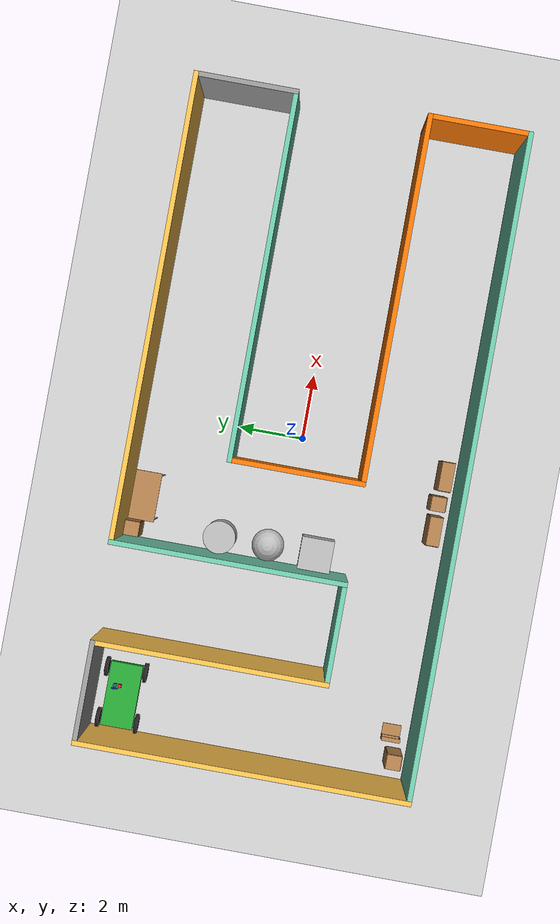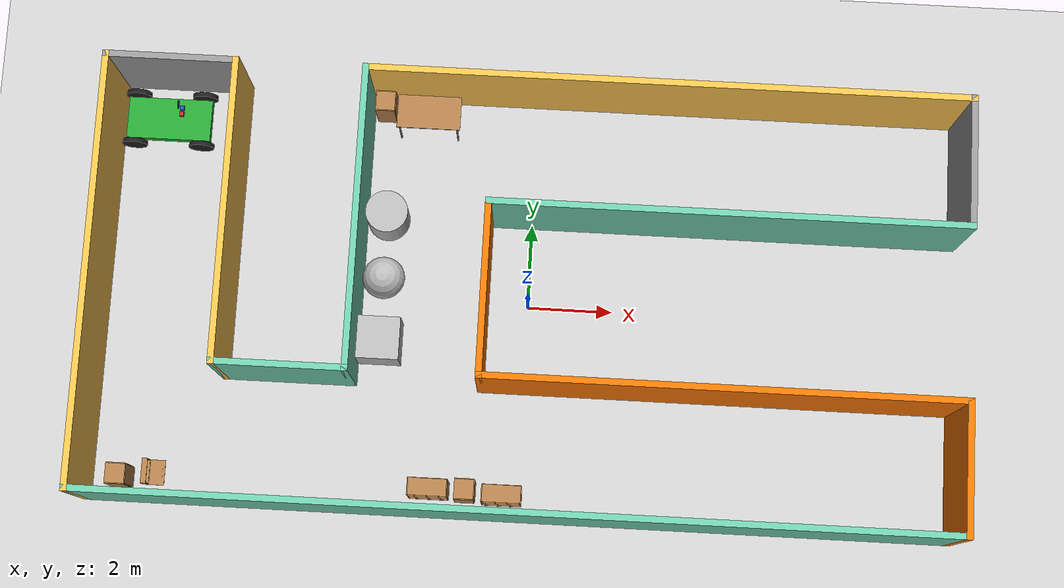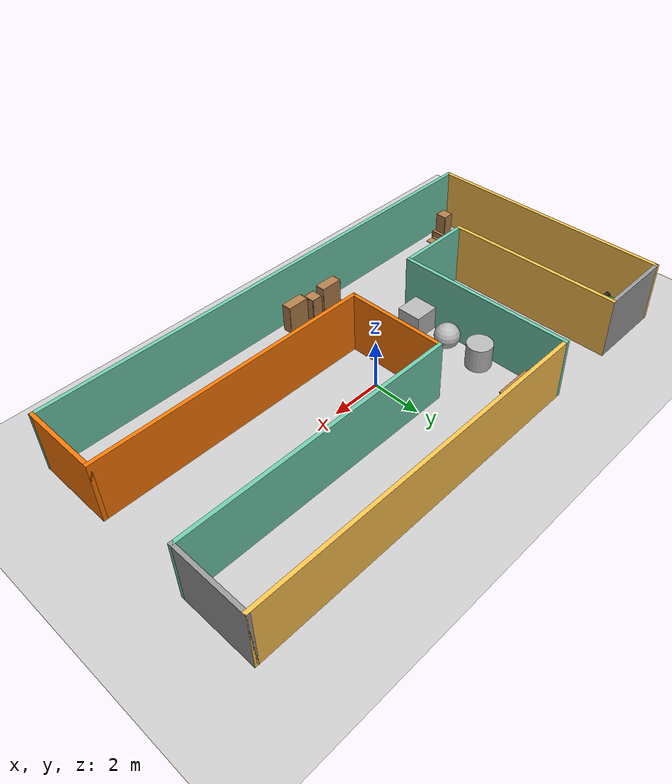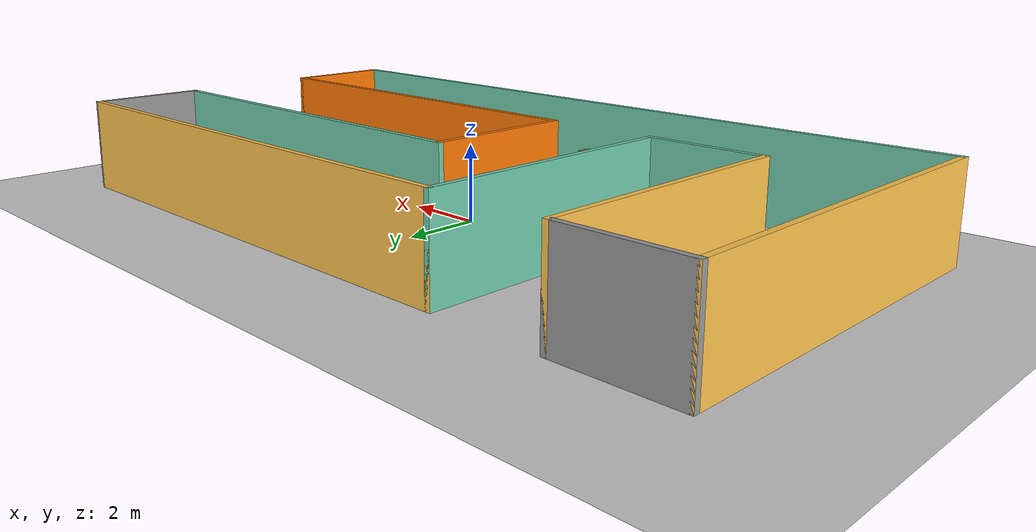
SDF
<sdf version="1.6">
 <world name="default">
  <model name="ground_plane">
   <static>1</static>
   <link name="link">
    <collision name="collision">
     <geometry><plane><normal>0 0 1</normal><size>100 100</size></plane></geometry>
     <surface>
      <contact><collide_bitmask>65535</collide_bitmask></contact>
      <friction><ode><mu>100</mu><mu2>50</mu2></ode></friction>
     </surface>
    </collision>
    <visual name="visual">
     <cast_shadows>0</cast_shadows>
     <geometry><plane><normal>0 0 1</normal><size>100 100</size></plane></geometry>
     <material>
      <script><uri>file://media/materials/scripts/gazebo.material</uri><name>Gazebo/Grey</name></script>
     </material>
    </visual>
   </link>
  </model>
  <model name="simplebuilding">
   <link name="Wall_0">
    <collision name="Wall_0_Collision">
     <geometry><box><size>10.15 0.15 2.5</size></box></geometry>
     <pose>0 0 1.25 0 -0 0</pose>
    </collision>
    <visual name="Wall_0_Visual">
     <pose>0 0 1.25 0 -0 0</pose>
     <geometry><box><size>10.15 0.15 2.5</size></box></geometry>
     <material>
      <script><uri>file://media/materials/scripts/gazebo.material</uri><name>Gazebo/Grey</name></script>
      <ambient>1 0.764706 0.305882 1</ambient>
     </material>
     <meta><layer>0</layer></meta>
    </visual>
    <pose>-10 0 0 0 0 -1.5708</pose>
   </link>
   <link name="Wall_10">
    <collision name="Wall_10_Collision">
     <geometry><box><size>7.15 0.15 2.5</size></box></geometry>
     <pose>0 0 1.25 0 -0 0</pose>
    </collision>
    <visual name="Wall_10_Visual">
     <pose>0 0 1.25 0 -0 0</pose>
     <geometry><box><size>7.15 0.15 2.5</size></box></geometry>
     <material>
      <script><uri>file://media/materials/scripts/gazebo.material</uri><name>Gazebo/Grey</name></script>
      <ambient>0.435294 0.796078 0.67451 1</ambient>
     </material>
     <meta><layer>0</layer></meta>
    </visual>
    <pose>-4 1.5 0 0 -0 1.5708</pose>
   </link>
   <link name="Wall_12">
    <collision name="Wall_12_Collision">
     <geometry><box><size>14.15 0.15 2.5</size></box></geometry>
     <pose>0 0 1.25 0 -0 0</pose>
    </collision>
    <visual name="Wall_12_Visual">
     <pose>0 0 1.25 0 -0 0</pose>
     <geometry><box><size>14.15 0.15 2.5</size></box></geometry>
     <material>
      <script><uri>file://media/materials/scripts/gazebo.material</uri><name>Gazebo/Grey</name></script>
      <ambient>1 0.764706 0.305882 1</ambient>
     </material>
     <meta><layer>0</layer></meta>
    </visual>
    <pose>3 5 0 0 -0 0</pose>
   </link>
   <link name="Wall_13">
    <collision name="Wall_13_Collision">
     <geometry><box><size>3.15 0.15 2.5</size></box></geometry>
     <pose>0 0 1.25 0 -0 0</pose>
    </collision>
    <visual name="Wall_13_Visual">
     <pose>0 0 1.25 0 -0 0</pose>
     <geometry><box><size>3.15 0.15 2.5</size></box></geometry>
     <material>
      <script><uri>file://media/materials/scripts/gazebo.material</uri><name>Gazebo/Grey</name></script>
      <ambient>1 1 1 1</ambient>
     </material>
     <meta><layer>0</layer></meta>
    </visual>
    <pose>10 3.5 0 0 0 -1.5708</pose>
   </link>
   <link name="Wall_15">
    <collision name="Wall_15_Collision">
     <geometry><box><size>11.15 0.15 2.5</size></box></geometry>
     <pose>0 0 1.25 0 -0 0</pose>
    </collision>
    <visual name="Wall_15_Visual">
     <pose>0 0 1.25 0 -0 0</pose>
     <geometry><box><size>11.15 0.15 2.5</size></box></geometry>
     <material>
      <script><uri>file://media/materials/scripts/gazebo.material</uri><name>Gazebo/Grey</name></script>
      <ambient>0.435294 0.796078 0.67451 1</ambient>
     </material>
     <meta><layer>0</layer></meta>
    </visual>
    <pose>4.5 2 0 0 -0 3.14159</pose>
   </link>
   <link name="Wall_17">
    <collision name="Wall_17_Collision">
     <geometry><box><size>4.15 0.15 2.5</size></box></geometry>
     <pose>0 0 1.25 0 -0 0</pose>
    </collision>
    <visual name="Wall_17_Visual">
     <pose>0 0 1.25 0 -0 0</pose>
     <geometry><box><size>4.15 0.15 2.5</size></box></geometry>
     <material>
      <script><uri>file://media/materials/scripts/gazebo.material</uri><name>Gazebo/Grey</name></script>
      <ambient>0.996078 0.47451 0.0196078 1</ambient>
     </material>
     <meta><layer>0</layer></meta>
    </visual>
    <pose>-1 0 0 0 0 -1.5708</pose>
   </link>
   <link name="Wall_19">
    <collision name="Wall_19_Collision">
     <geometry><box><size>11.15 0.15 2.5</size></box></geometry>
     <pose>0 0 1.25 0 -0 0</pose>
    </collision>
    <visual name="Wall_19_Visual">
     <pose>0 0 1.25 0 -0 0</pose>
     <geometry><box><size>11.15 0.15 2.5</size></box></geometry>
     <material>
      <script><uri>file://media/materials/scripts/gazebo.material</uri><name>Gazebo/Grey</name></script>
      <ambient>0.996078 0.47451 0.0196078 1</ambient>
     </material>
     <meta><layer>0</layer></meta>
    </visual>
    <pose>4.5 -2 0 0 -0 0</pose>
   </link>
   <link name="Wall_2">
    <collision name="Wall_2_Collision">
     <geometry><box><size>20.15 0.15 2.5</size></box></geometry>
     <pose>0 0 1.25 0 -0 0</pose>
    </collision>
    <visual name="Wall_2_Visual">
     <pose>0 0 1.25 0 -0 0</pose>
     <geometry><box><size>20.15 0.15 2.5</size></box></geometry>
     <material>
      <script><uri>file://media/materials/scripts/gazebo.material</uri><name>Gazebo/Grey</name></script>
      <ambient>0.435294 0.796078 0.67451 1</ambient>
     </material>
     <meta><layer>0</layer></meta>
    </visual>
    <pose>0 -5 0 0 -0 0</pose>
   </link>
   <link name="Wall_21">
    <collision name="Wall_21_Collision">
     <geometry><box><size>3.15 0.15 2.5</size></box></geometry>
     <pose>0 0 1.25 0 -0 0</pose>
    </collision>
    <visual name="Wall_21_Visual">
     <pose>0 0 1.25 0 -0 0</pose>
     <geometry><box><size>3.15 0.15 2.5</size></box></geometry>
     <material>
      <script><uri>file://media/materials/scripts/gazebo.material</uri><name>Gazebo/Grey</name></script>
      <ambient>0.996078 0.47451 0.0196078 1</ambient>
     </material>
     <meta><layer>0</layer></meta>
    </visual>
    <pose>10 -3.5 0 0 0 -1.5708</pose>
   </link>
   <link name="Wall_4">
    <collision name="Wall_4_Collision">
     <geometry><box><size>3.15 0.15 2.5</size></box></geometry>
     <pose>0 0 1.25 0 -0 0</pose>
    </collision>
    <visual name="Wall_4_Visual">
     <pose>0 0 1.25 0 -0 0</pose>
     <geometry><box><size>3.15 0.15 2.5</size></box></geometry>
     <material>
      <script><uri>file://media/materials/scripts/gazebo.material</uri><name>Gazebo/Grey</name></script>
      <ambient>1 1 1 1</ambient>
     </material>
     <meta><layer>0</layer></meta>
    </visual>
    <pose>-8.5 5 0 0 -0 0</pose>
   </link>
   <link name="Wall_6">
    <collision name="Wall_6_Collision">
     <geometry><box><size>7.15 0.15 2.5</size></box></geometry>
     <pose>0 0 1.25 0 -0 0</pose>
    </collision>
    <visual name="Wall_6_Visual">
     <pose>0 0 1.25 0 -0 0</pose>
     <geometry><box><size>7.15 0.15 2.5</size></box></geometry>
     <material>
      <script><uri>file://media/materials/scripts/gazebo.material</uri><name>Gazebo/Grey</name></script>
      <ambient>1 0.764706 0.305882 1</ambient>
     </material>
     <meta><layer>0</layer></meta>
    </visual>
    <pose>-7 1.5 0 0 0 -1.5708</pose>
   </link>
   <link name="Wall_8">
    <collision name="Wall_8_Collision">
     <geometry><box><size>3.15 0.15 2.5</size></box></geometry>
     <pose>0 0 1.25 0 -0 0</pose>
    </collision>
    <visual name="Wall_8_Visual">
     <pose>0 0 1.25 0 -0 0</pose>
     <geometry><box><size>3.15 0.15 2.5</size></box></geometry>
     <material>
      <script><uri>file://media/materials/scripts/gazebo.material</uri><name>Gazebo/Grey</name></script>
      <ambient>0.435294 0.796078 0.67451 1</ambient>
     </material>
     <meta><layer>0</layer></meta>
    </visual>
    <pose>-5.5 -2 0 0 -0 0</pose>
   </link>
   <static>1</static>
  </model>
  <model name="cabinet">
   <static>1</static>
   <link name="cabinet_bottom_plate">
    <inertial>
     <pose>0 0 -1 0 -0 0</pose>
     <inertia><ixx>2.05</ixx><ixy>0</ixy><ixz>0</ixz><iyy>2.05</iyy><iyz>0</iyz><izz>2.05</izz></inertia>
     <mass>25</mass>
    </inertial>
    <collision name="cabinet_bottom_plate_geom">
     <pose>0 0 0.01 0 -0 0</pose>
     <geometry><box><size>0.45 0.45 0.02</size></box></geometry>
    </collision>
    <visual name="cabinet_bottom_plate_geom_visual">
     <pose>0 0 0.01 0 -0 0</pose>
     <geometry><box><size>0.45 0.45 0.02</size></box></geometry>
     <material>
      <script><uri>file://media/materials/scripts/gazebo.material</uri><name>Gazebo/Wood</name></script>
     </material>
    </visual>
    <collision name="cabinet_bottom_plate_geom_cabinet_back_plate">
     <pose>0.235 0 0.51 0 -0 0</pose>
     <geometry><box><size>0.02 0.45 1.02</size></box></geometry>
    </collision>
    <visual name="cabinet_bottom_plate_geom_cabinet_back_plate_visual">
     <pose>0.235 0 0.51 0 -0 0</pose>
     <geometry><box><size>0.02 0.45 1.02</size></box></geometry>
     <material>
      <script><uri>file://media/materials/scripts/gazebo.material</uri><name>Gazebo/Wood</name></script>
     </material>
    </visual>
    <collision name="cabinet_bottom_plate_geom_cabinet_left_plate">
     <pose>0 0.235 0.51 0 -0 0</pose>
     <geometry><box><size>0.45 0.02 1.02</size></box></geometry>
    </collision>
    <visual name="cabinet_bottom_plate_geom_cabinet_left_plate_visual">
     <pose>0 0.235 0.51 0 -0 0</pose>
     <geometry><box><size>0.45 0.02 1.02</size></box></geometry>
     <material>
      <script><uri>file://media/materials/scripts/gazebo.material</uri><name>Gazebo/Wood</name></script>
     </material>
    </visual>
    <collision name="cabinet_bottom_plate_geom_cabinet_middle_plate">
     <pose>0 0 0.51 0 -0 0</pose>
     <geometry><box><size>0.45 0.45 0.02</size></box></geometry>
    </collision>
    <visual name="cabinet_bottom_plate_geom_cabinet_middle_plate_visual">
     <pose>0 0 0.51 0 -0 0</pose>
     <geometry><box><size>0.45 0.45 0.02</size></box></geometry>
     <material>
      <script><uri>file://media/materials/scripts/gazebo.material</uri><name>Gazebo/Wood</name></script>
     </material>
    </visual>
    <collision name="cabinet_bottom_plate_geom_cabinet_right_plate">
     <pose>0 -0.235 0.51 0 -0 0</pose>
     <geometry><box><size>0.45 0.02 1.02</size></box></geometry>
    </collision>
    <visual name="cabinet_bottom_plate_geom_cabinet_right_plate_visual">
     <pose>0 -0.235 0.51 0 -0 0</pose>
     <geometry><box><size>0.45 0.02 1.02</size></box></geometry>
     <material>
      <script><uri>file://media/materials/scripts/gazebo.material</uri><name>Gazebo/Wood</name></script>
     </material>
    </visual>
    <collision name="cabinet_bottom_plate_geom_cabinet_top_plate">
     <pose>0 0 1.01 0 -0 0</pose>
     <geometry><box><size>0.45 0.45 0.02</size></box></geometry>
    </collision>
    <visual name="cabinet_bottom_plate_geom_cabinet_top_plate_visual">
     <pose>0 0 1.01 0 -0 0</pose>
     <geometry><box><size>0.45 0.45 0.02</size></box></geometry>
     <material>
      <script><uri>file://media/materials/scripts/gazebo.material</uri><name>Gazebo/Wood</name></script>
     </material>
    </visual>
   </link>
   <pose>-9.22504 -4.50417 0 0 -0 0</pose>
  </model>
  <model name="cabinet_0">
   <static>1</static>
   <link name="cabinet_bottom_plate">
    <inertial>
     <pose>0 0 -1 0 -0 0</pose>
     <inertia><ixx>2.05</ixx><ixy>0</ixy><ixz>0</ixz><iyy>2.05</iyy><iyz>0</iyz><izz>2.05</izz></inertia>
     <mass>25</mass>
    </inertial>
    <collision name="cabinet_bottom_plate_geom">
     <pose>0 0 0.01 0 -0 0</pose>
     <geometry><box><size>0.45 0.45 0.02</size></box></geometry>
    </collision>
    <visual name="cabinet_bottom_plate_geom_visual">
     <pose>0 0 0.01 0 -0 0</pose>
     <geometry><box><size>0.45 0.45 0.02</size></box></geometry>
     <material>
      <script><uri>file://media/materials/scripts/gazebo.material</uri><name>Gazebo/Wood</name></script>
     </material>
    </visual>
    <collision name="cabinet_bottom_plate_geom_cabinet_back_plate">
     <pose>0.235 0 0.51 0 -0 0</pose>
     <geometry><box><size>0.02 0.45 1.02</size></box></geometry>
    </collision>
    <visual name="cabinet_bottom_plate_geom_cabinet_back_plate_visual">
     <pose>0.235 0 0.51 0 -0 0</pose>
     <geometry><box><size>0.02 0.45 1.02</size></box></geometry>
     <material>
      <script><uri>file://media/materials/scripts/gazebo.material</uri><name>Gazebo/Wood</name></script>
     </material>
    </visual>
    <collision name="cabinet_bottom_plate_geom_cabinet_left_plate">
     <pose>0 0.235 0.51 0 -0 0</pose>
     <geometry><box><size>0.45 0.02 1.02</size></box></geometry>
    </collision>
    <visual name="cabinet_bottom_plate_geom_cabinet_left_plate_visual">
     <pose>0 0.235 0.51 0 -0 0</pose>
     <geometry><box><size>0.45 0.02 1.02</size></box></geometry>
     <material>
      <script><uri>file://media/materials/scripts/gazebo.material</uri><name>Gazebo/Wood</name></script>
     </material>
    </visual>
    <collision name="cabinet_bottom_plate_geom_cabinet_middle_plate">
     <pose>0 0 0.51 0 -0 0</pose>
     <geometry><box><size>0.45 0.45 0.02</size></box></geometry>
    </collision>
    <visual name="cabinet_bottom_plate_geom_cabinet_middle_plate_visual">
     <pose>0 0 0.51 0 -0 0</pose>
     <geometry><box><size>0.45 0.45 0.02</size></box></geometry>
     <material>
      <script><uri>file://media/materials/scripts/gazebo.material</uri><name>Gazebo/Wood</name></script>
     </material>
    </visual>
    <collision name="cabinet_bottom_plate_geom_cabinet_right_plate">
     <pose>0 -0.235 0.51 0 -0 0</pose>
     <geometry><box><size>0.45 0.02 1.02</size></box></geometry>
    </collision>
    <visual name="cabinet_bottom_plate_geom_cabinet_right_plate_visual">
     <pose>0 -0.235 0.51 0 -0 0</pose>
     <geometry><box><size>0.45 0.02 1.02</size></box></geometry>
     <material>
      <script><uri>file://media/materials/scripts/gazebo.material</uri><name>Gazebo/Wood</name></script>
     </material>
    </visual>
    <collision name="cabinet_bottom_plate_geom_cabinet_top_plate">
     <pose>0 0 1.01 0 -0 0</pose>
     <geometry><box><size>0.45 0.45 0.02</size></box></geometry>
    </collision>
    <visual name="cabinet_bottom_plate_geom_cabinet_top_plate_visual">
     <pose>0 0 1.01 0 -0 0</pose>
     <geometry><box><size>0.45 0.45 0.02</size></box></geometry>
     <material>
      <script><uri>file://media/materials/scripts/gazebo.material</uri><name>Gazebo/Wood</name></script>
     </material>
    </visual>
   </link>
   <pose>-3.62763 4.63881 0 0 -0 0</pose>
  </model>
  <model name="cabinet_1">
   <static>1</static>
   <link name="cabinet_bottom_plate">
    <inertial>
     <pose>0 0 -1 0 -0 0</pose>
     <inertia><ixx>2.05</ixx><ixy>0</ixy><ixz>0</ixz><iyy>2.05</iyy><iyz>0</iyz><izz>2.05</izz></inertia>
     <mass>25</mass>
    </inertial>
    <collision name="cabinet_bottom_plate_geom">
     <pose>0 0 0.01 0 -0 0</pose>
     <geometry><box><size>0.45 0.45 0.02</size></box></geometry>
    </collision>
    <visual name="cabinet_bottom_plate_geom_visual">
     <pose>0 0 0.01 0 -0 0</pose>
     <geometry><box><size>0.45 0.45 0.02</size></box></geometry>
     <material>
      <script><uri>file://media/materials/scripts/gazebo.material</uri><name>Gazebo/Wood</name></script>
     </material>
    </visual>
    <collision name="cabinet_bottom_plate_geom_cabinet_back_plate">
     <pose>0.235 0 0.51 0 -0 0</pose>
     <geometry><box><size>0.02 0.45 1.02</size></box></geometry>
    </collision>
    <visual name="cabinet_bottom_plate_geom_cabinet_back_plate_visual">
     <pose>0.235 0 0.51 0 -0 0</pose>
     <geometry><box><size>0.02 0.45 1.02</size></box></geometry>
     <material>
      <script><uri>file://media/materials/scripts/gazebo.material</uri><name>Gazebo/Wood</name></script>
     </material>
    </visual>
    <collision name="cabinet_bottom_plate_geom_cabinet_left_plate">
     <pose>0 0.235 0.51 0 -0 0</pose>
     <geometry><box><size>0.45 0.02 1.02</size></box></geometry>
    </collision>
    <visual name="cabinet_bottom_plate_geom_cabinet_left_plate_visual">
     <pose>0 0.235 0.51 0 -0 0</pose>
     <geometry><box><size>0.45 0.02 1.02</size></box></geometry>
     <material>
      <script><uri>file://media/materials/scripts/gazebo.material</uri><name>Gazebo/Wood</name></script>
     </material>
    </visual>
    <collision name="cabinet_bottom_plate_geom_cabinet_middle_plate">
     <pose>0 0 0.51 0 -0 0</pose>
     <geometry><box><size>0.45 0.45 0.02</size></box></geometry>
    </collision>
    <visual name="cabinet_bottom_plate_geom_cabinet_middle_plate_visual">
     <pose>0 0 0.51 0 -0 0</pose>
     <geometry><box><size>0.45 0.45 0.02</size></box></geometry>
     <material>
      <script><uri>file://media/materials/scripts/gazebo.material</uri><name>Gazebo/Wood</name></script>
     </material>
    </visual>
    <collision name="cabinet_bottom_plate_geom_cabinet_right_plate">
     <pose>0 -0.235 0.51 0 -0 0</pose>
     <geometry><box><size>0.45 0.02 1.02</size></box></geometry>
    </collision>
    <visual name="cabinet_bottom_plate_geom_cabinet_right_plate_visual">
     <pose>0 -0.235 0.51 0 -0 0</pose>
     <geometry><box><size>0.45 0.02 1.02</size></box></geometry>
     <material>
      <script><uri>file://media/materials/scripts/gazebo.material</uri><name>Gazebo/Wood</name></script>
     </material>
    </visual>
    <collision name="cabinet_bottom_plate_geom_cabinet_top_plate">
     <pose>0 0 1.01 0 -0 0</pose>
     <geometry><box><size>0.45 0.45 0.02</size></box></geometry>
    </collision>
    <visual name="cabinet_bottom_plate_geom_cabinet_top_plate_visual">
     <pose>0 0 1.01 0 -0 0</pose>
     <geometry><box><size>0.45 0.45 0.02</size></box></geometry>
     <material>
      <script><uri>file://media/materials/scripts/gazebo.material</uri><name>Gazebo/Wood</name></script>
     </material>
    </visual>
   </link>
   <pose>-1.22916 -4.44021 0 0 -0 0</pose>
  </model>
  <model name="table">
   <static>1</static>
   <link name="link">
    <collision name="surface">
     <pose>0 0 1 0 -0 0</pose>
     <geometry><box><size>1.5 0.8 0.03</size></box></geometry>
     <surface><friction><ode><mu>0.6</mu><mu2>0.6</mu2></ode></friction></surface>
    </collision>
    <visual name="visual1">
     <pose>0 0 1 0 -0 0</pose>
     <geometry><box><size>1.5 0.8 0.03</size></box></geometry>
     <material>
      <script><uri>file://media/materials/scripts/gazebo.material</uri><name>Gazebo/Wood</name></script>
     </material>
    </visual>
    <collision name="front_left_leg">
     <pose>0.68 0.38 0.5 0 -0 0</pose>
     <geometry><cylinder><radius>0.02</radius><length>1</length></cylinder></geometry>
    </collision>
    <visual name="front_left_leg">
     <pose>0.68 0.38 0.5 0 -0 0</pose>
     <geometry><cylinder><radius>0.02</radius><length>1</length></cylinder></geometry>
     <material>
      <script><uri>file://media/materials/scripts/gazebo.material</uri><name>Gazebo/Grey</name></script>
     </material>
    </visual>
    <collision name="front_right_leg">
     <pose>0.68 -0.38 0.5 0 -0 0</pose>
     <geometry><cylinder><radius>0.02</radius><length>1</length></cylinder></geometry>
    </collision>
    <visual name="front_right_leg">
     <pose>0.68 -0.38 0.5 0 -0 0</pose>
     <geometry><cylinder><radius>0.02</radius><length>1</length></cylinder></geometry>
     <material>
      <script><uri>file://media/materials/scripts/gazebo.material</uri><name>Gazebo/Grey</name></script>
     </material>
    </visual>
    <collision name="back_right_leg">
     <pose>-0.68 -0.38 0.5 0 -0 0</pose>
     <geometry><cylinder><radius>0.02</radius><length>1</length></cylinder></geometry>
    </collision>
    <visual name="back_right_leg">
     <pose>-0.68 -0.38 0.5 0 -0 0</pose>
     <geometry><cylinder><radius>0.02</radius><length>1</length></cylinder></geometry>
     <material>
      <script><uri>file://media/materials/scripts/gazebo.material</uri><name>Gazebo/Grey</name></script>
     </material>
    </visual>
    <collision name="back_left_leg">
     <pose>-0.68 0.38 0.5 0 -0 0</pose>
     <geometry><cylinder><radius>0.02</radius><length>1</length></cylinder></geometry>
    </collision>
    <visual name="back_left_leg">
     <pose>-0.68 0.38 0.5 0 -0 0</pose>
     <geometry><cylinder><radius>0.02</radius><length>1</length></cylinder></geometry>
     <material>
      <script><uri>file://media/materials/scripts/gazebo.material</uri><name>Gazebo/Grey</name></script>
     </material>
    </visual>
   </link>
   <pose>-2.57486 4.40862 0 0 -0 0</pose>
  </model>
  <model name="car">
   <link name="chassis">
    <pose>0 0 0.3 0 -0 0</pose>
    <collision name="collision"><geometry><box><size>2 1 0.2</size></box></geometry></collision>
    <visual name="visual">
     <geometry><box><size>2 1 0.2</size></box></geometry>
     <material>
      <script><uri>file://media/materials/scripts/gazebo.material</uri><name>Gazebo/Green</name></script>
     </material>
    </visual>
    <inertial>
     <inertia><ixx>1</ixx><ixy>0</ixy><ixz>0</ixz><iyy>1</iyy><iyz>0</iyz><izz>1</izz></inertia>
     <mass>1</mass>
    </inertial>
   </link>
   <link name="front_left_wheel">
    <pose>0.8 0.6 0.3 -0 1.5707 1.5707</pose>
    <collision name="collision">
     <geometry><cylinder><radius>0.3</radius><length>0.1</length></cylinder></geometry>
    </collision>
    <visual name="visual">
     <geometry><cylinder><radius>0.3</radius><length>0.1</length></cylinder></geometry>
     <material>
      <script><uri>file://media/materials/scripts/gazebo.material</uri><name>Gazebo/Black</name></script>
     </material>
    </visual>
    <inertial>
     <inertia><ixx>1</ixx><ixy>0</ixy><ixz>0</ixz><iyy>1</iyy><iyz>0</iyz><izz>1</izz></inertia>
     <mass>1</mass>
    </inertial>
   </link>
   <link name="front_right_wheel">
    <pose>0.8 -0.6 0.3 -0 1.5707 1.5707</pose>
    <collision name="collision">
     <geometry><cylinder><radius>0.3</radius><length>0.1</length></cylinder></geometry>
    </collision>
    <visual name="visual">
     <geometry><cylinder><radius>0.3</radius><length>0.1</length></cylinder></geometry>
     <material>
      <script><uri>file://media/materials/scripts/gazebo.material</uri><name>Gazebo/Black</name></script>
     </material>
    </visual>
    <inertial>
     <inertia><ixx>1</ixx><ixy>0</ixy><ixz>0</ixz><iyy>1</iyy><iyz>0</iyz><izz>1</izz></inertia>
     <mass>1</mass>
    </inertial>
   </link>
   <link name="back_right_wheel">
    <pose>-0.8 -0.6 0.3 -0 1.5707 1.5707</pose>
    <collision name="collision">
     <geometry><cylinder><radius>0.3</radius><length>0.1</length></cylinder></geometry>
    </collision>
    <visual name="visual">
     <geometry><cylinder><radius>0.3</radius><length>0.1</length></cylinder></geometry>
     <material>
      <script><uri>file://media/materials/scripts/gazebo.material</uri><name>Gazebo/Black</name></script>
     </material>
    </visual>
    <inertial>
     <inertia><ixx>1</ixx><ixy>0</ixy><ixz>0</ixz><iyy>1</iyy><iyz>0</iyz><izz>1</izz></inertia>
     <mass>1</mass>
    </inertial>
   </link>
   <link name="back_left_wheel">
    <pose>-0.8 0.6 0.3 -0 1.5707 1.5707</pose>
    <collision name="collision">
     <geometry><cylinder><radius>0.3</radius><length>0.1</length></cylinder></geometry>
    </collision>
    <visual name="visual">
     <geometry><cylinder><radius>0.3</radius><length>0.1</length></cylinder></geometry>
     <material>
      <script><uri>file://media/materials/scripts/gazebo.material</uri><name>Gazebo/Black</name></script>
     </material>
    </visual>
    <inertial>
     <inertia><ixx>1</ixx><ixy>0</ixy><ixz>0</ixz><iyy>1</iyy><iyz>0</iyz><izz>1</izz></inertia>
     <mass>1</mass>
    </inertial>
   </link>
   <link name="gas_pedal">
    <pose>0.3 0.1 0.5 0 -0 0</pose>
    <collision name="collision"><geometry><box><size>0.1 0.1 0.1</size></box></geometry></collision>
    <visual name="visual">
     <geometry><box><size>0.1 0.1 0.1</size></box></geometry>
     <material>
      <script><uri>file://media/materials/scripts/gazebo.material</uri><name>Gazebo/Red</name></script>
     </material>
    </visual>
    <inertial>
     <inertia><ixx>1</ixx><ixy>0</ixy><ixz>0</ixz><iyy>1</iyy><iyz>0</iyz><izz>1</izz></inertia>
     <mass>1</mass>
    </inertial>
   </link>
   <link name="brake_pedal">
    <pose>0.3 0.25 0.5 0 -0 0</pose>
    <collision name="collision"><geometry><box><size>0.1 0.1 0.1</size></box></geometry></collision>
    <visual name="visual">
     <geometry><box><size>0.1 0.1 0.1</size></box></geometry>
     <material>
      <script><uri>file://media/materials/scripts/gazebo.material</uri><name>Gazebo/Blue</name></script>
     </material>
    </visual>
    <inertial>
     <inertia><ixx>1</ixx><ixy>0</ixy><ixz>0</ixz><iyy>1</iyy><iyz>0</iyz><izz>1</izz></inertia>
     <mass>1</mass>
    </inertial>
   </link>
   <link name="steering_wheel">
    <pose>0.3 0.2 1 0 1.5707 0</pose>
    <collision name="collision">
     <geometry><cylinder><radius>0.1</radius><length>0.01</length></cylinder></geometry>
    </collision>
    <visual name="visual">
     <geometry><cylinder><radius>0.1</radius><length>0.01</length></cylinder></geometry>
     <material>
      <script><uri>file://media/materials/scripts/gazebo.material</uri><name>Gazebo/Blue</name></script>
     </material>
    </visual>
    <inertial>
     <inertia><ixx>1</ixx><ixy>0</ixy><ixz>0</ixz><iyy>1</iyy><iyz>0</iyz><izz>1</izz></inertia>
     <mass>1</mass>
    </inertial>
   </link>
   <joint name="gas_joint" type="prismatic">
    <parent>chassis</parent>
    <child>gas_pedal</child>
    <axis>
     <xyz>1 0 0</xyz>
     <limit><lower>0</lower><upper>0.2</upper></limit>
     <use_parent_model_frame>1</use_parent_model_frame>
     <dynamics><spring_reference>0</spring_reference><spring_stiffness>0</spring_stiffness></dynamics>
    </axis>
   </joint>
   <joint name="brake_joint" type="prismatic">
    <parent>chassis</parent>
    <child>brake_pedal</child>
    <axis>
     <xyz>1 0 0</xyz>
     <limit><lower>0</lower><upper>0.2</upper></limit>
     <use_parent_model_frame>1</use_parent_model_frame>
     <dynamics><spring_reference>0</spring_reference><spring_stiffness>0</spring_stiffness></dynamics>
    </axis>
   </joint>
   <joint name="steering_joint" type="revolute">
    <parent>chassis</parent>
    <child>steering_wheel</child>
    <axis>
     <xyz>1 0 0</xyz>
     <limit><lower>-7.853</lower><upper>7.853</upper></limit>
     <use_parent_model_frame>1</use_parent_model_frame>
     <dynamics><spring_reference>0</spring_reference><spring_stiffness>0</spring_stiffness></dynamics>
    </axis>
   </joint>
   <joint name="front_left_joint" type="revolute2">
    <parent>chassis</parent>
    <child>front_left_wheel</child>
    <axis>
     <xyz>0 0 1</xyz>
     <limit><lower>8.59665e-06</lower><upper>8.59665e-06</upper></limit>
     <use_parent_model_frame>1</use_parent_model_frame>
     <dynamics><spring_reference>0</spring_reference><spring_stiffness>0</spring_stiffness></dynamics>
    </axis>
    <axis2>
     <xyz>0 1 0</xyz>
     <use_parent_model_frame>1</use_parent_model_frame>
     <dynamics><spring_reference>0</spring_reference><spring_stiffness>0</spring_stiffness></dynamics>
    </axis2>
    <physics><ode><limit><cfm>0</cfm><erp>0.9</erp></limit></ode></physics>
   </joint>
   <joint name="front_right_joint" type="revolute2">
    <parent>chassis</parent>
    <child>front_right_wheel</child>
    <axis>
     <xyz>0 0 1</xyz>
     <limit><lower>8.59665e-06</lower><upper>8.59665e-06</upper></limit>
     <use_parent_model_frame>1</use_parent_model_frame>
     <dynamics><spring_reference>0</spring_reference><spring_stiffness>0</spring_stiffness></dynamics>
    </axis>
    <axis2>
     <xyz>0 1 0</xyz>
     <use_parent_model_frame>1</use_parent_model_frame>
     <dynamics><spring_reference>0</spring_reference><spring_stiffness>0</spring_stiffness></dynamics>
    </axis2>
    <physics><ode><limit><cfm>0</cfm><erp>0.9</erp></limit></ode></physics>
   </joint>
   <joint name="back_right_joint" type="revolute2">
    <parent>chassis</parent>
    <child>back_right_wheel</child>
    <axis>
     <xyz>0 0 1</xyz>
     <limit><lower>0</lower><upper>0</upper></limit>
     <use_parent_model_frame>1</use_parent_model_frame>
     <dynamics><spring_reference>0</spring_reference><spring_stiffness>0</spring_stiffness></dynamics>
    </axis>
    <axis2>
     <xyz>0 1 0</xyz>
     <use_parent_model_frame>1</use_parent_model_frame>
     <dynamics><spring_reference>0</spring_reference><spring_stiffness>0</spring_stiffness></dynamics>
    </axis2>
    <physics><ode><limit><cfm>0</cfm><erp>0.9</erp></limit></ode></physics>
   </joint>
   <joint name="back_left_joint" type="revolute2">
    <parent>chassis</parent>
    <child>back_left_wheel</child>
    <axis>
     <xyz>0 0 1</xyz>
     <limit><lower>0</lower><upper>0</upper></limit>
     <use_parent_model_frame>1</use_parent_model_frame>
     <dynamics><spring_reference>0</spring_reference><spring_stiffness>0</spring_stiffness></dynamics>
    </axis>
    <axis2>
     <xyz>0 1 0</xyz>
     <use_parent_model_frame>1</use_parent_model_frame>
     <dynamics><spring_reference>0</spring_reference><spring_stiffness>0</spring_stiffness></dynamics>
    </axis2>
    <physics><ode><limit><cfm>0</cfm><erp>0.9</erp></limit></ode></physics>
   </joint>
   <plugin name="vehicle" filename="libVehiclePlugin.so">
    <front_left>front_left_joint</front_left>
    <front_right>front_right_joint</front_right>
    <back_left>back_left_joint</back_left>
    <back_right>back_right_joint</back_right>
    <gas>gas_joint</gas>
    <brake>brake_joint</brake>
    <steering>steering_joint</steering>
    <front_power>10</front_power>
    <rear_power>10</rear_power>
    <tire_angle_range>0.5</tire_angle_range>
    <max_speed>10</max_speed>
    <aero_load>0.1</aero_load>
   </plugin>
   <pose>-8.8251 4.08357 -0.002615 -0.000273 0.000907 0.000236</pose>
  </model>
  <model name="textured_shapes">
   <pose>-3.42499 0.460971 0.5 0 -0 3e-06</pose>
   <link name="box">
    <pose>0 -1.5 0 0 -0 0</pose>
    <collision name="collision"><geometry><box><size>1 1 1</size></box></geometry></collision>
    <visual name="visual">
     <geometry><box><size>1 1 1</size></box></geometry>
     <material>
      <script>
       <uri>model://textured_shapes/materials/scripts</uri>
       <uri>model://textured_shapes/materials/textures</uri>
       <name>TexturedShape/Squares</name>
      </script>
     </material>
    </visual>
    <inertial>
     <inertia><ixx>1</ixx><ixy>0</ixy><ixz>0</ixz><iyy>1</iyy><iyz>0</iyz><izz>1</izz></inertia>
     <mass>1</mass>
    </inertial>
   </link>
   <link name="sphere">
    <collision name="collision"><geometry><sphere><radius>0.5</radius></sphere></geometry></collision>
    <visual name="visual">
     <geometry><sphere><radius>0.5</radius></sphere></geometry>
     <material>
      <script>
       <uri>model://textured_shapes/materials/scripts</uri>
       <uri>model://textured_shapes/materials/textures</uri>
       <name>TexturedShape/Squares</name>
      </script>
     </material>
    </visual>
    <inertial>
     <inertia><ixx>1</ixx><ixy>0</ixy><ixz>0</ixz><iyy>1</iyy><iyz>0</iyz><izz>1</izz></inertia>
     <mass>1</mass>
    </inertial>
   </link>
   <link name="cylinder">
    <pose>0 1.5 0 0 -0 0</pose>
    <collision name="collision">
     <geometry><cylinder><radius>0.5</radius><length>1</length></cylinder></geometry>
    </collision>
    <visual name="visual">
     <geometry><cylinder><radius>0.5</radius><length>1</length></cylinder></geometry>
     <material>
      <script>
       <uri>model://textured_shapes/materials/scripts</uri>
       <uri>model://textured_shapes/materials/textures</uri>
       <name>TexturedShape/Squares</name>
      </script>
     </material>
    </visual>
    <inertial>
     <inertia><ixx>1</ixx><ixy>0</ixy><ixz>0</ixz><iyy>1</iyy><iyz>0</iyz><izz>1</izz></inertia>
     <mass>1</mass>
    </inertial>
   </link>
  </model>
  <model name="wooden_case">
   <link name="base">
    <pose>0 0 0.024 0 -0 0</pose>
    <inertial>
     <pose>-0.022184 0 0.171592 0 -0 0</pose>
     <mass>3.96264</mass>
     <inertia>
      <ixx>0.213536</ixx>
      <ixy>0</ixy>
      <ixz>0.000779377</ixz>
      <iyy>0.0708943</iyy>
      <iyz>0</iyz>
      <izz>0.154604</izz>
     </inertia>
    </inertial>
    <collision name="collision_back">
     <pose>-0.053975 0 0.1778 0 -0 0</pose>
     <geometry><box><size>0.01905 0.5461 0.3175</size></box></geometry>
     <surface>
      <contact>
       <poissons_ratio>0.347</poissons_ratio>
       <elastic_modulus>8.8e+09</elastic_modulus>
       <ode><kp>100000</kp><kd>100</kd><max_vel>100</max_vel><min_depth>0.001</min_depth></ode>
      </contact>
      <friction>
       <torsional>
        <coefficient>1</coefficient>
        <use_patch_radius>0</use_patch_radius>
        <surface_radius>0.01</surface_radius>
       </torsional>
      </friction>
     </surface>
    </collision>
    <visual name="visual_back">
     <pose>-0.053975 0 0.1778 0 -0 0</pose>
     <geometry><box><size>0.01905 0.5461 0.3175</size></box></geometry>
     <material>
      <script><uri>file://media/materials/scripts/gazebo.material</uri><name>Gazebo/Wood</name></script>
     </material>
    </visual>
    <collision name="collision_bottom">
     <pose>0 0 0.009525 0 -0 0</pose>
     <geometry><box><size>0.127 0.5842 0.01905</size></box></geometry>
     <surface>
      <contact>
       <poissons_ratio>0.347</poissons_ratio>
       <elastic_modulus>8.8e+09</elastic_modulus>
       <ode><kp>100000</kp><kd>100</kd><max_vel>100</max_vel><min_depth>0.001</min_depth></ode>
      </contact>
      <friction>
       <torsional>
        <coefficient>1</coefficient>
        <use_patch_radius>0</use_patch_radius>
        <surface_radius>0.01</surface_radius>
       </torsional>
      </friction>
     </surface>
    </collision>
    <visual name="visual_bottom">
     <pose>0 0 0.009525 0 -0 0</pose>
     <geometry><box><size>0.127 0.5842 0.01905</size></box></geometry>
     <material>
      <script><uri>file://media/materials/scripts/gazebo.material</uri><name>Gazebo/Wood</name></script>
     </material>
    </visual>
    <collision name="collision_top">
     <pose>0 0 0.346075 0 -0 0</pose>
     <geometry><box><size>0.127 0.5842 0.01905</size></box></geometry>
     <surface>
      <contact>
       <poissons_ratio>0.347</poissons_ratio>
       <elastic_modulus>8.8e+09</elastic_modulus>
       <ode><kp>100000</kp><kd>100</kd><max_vel>100</max_vel><min_depth>0.001</min_depth></ode>
      </contact>
      <friction>
       <torsional>
        <coefficient>1</coefficient>
        <use_patch_radius>0</use_patch_radius>
        <surface_radius>0.01</surface_radius>
       </torsional>
      </friction>
     </surface>
    </collision>
    <visual name="visual_top">
     <pose>0 0 0.346075 0 -0 0</pose>
     <geometry><box><size>0.127 0.5842 0.01905</size></box></geometry>
     <material>
      <script><uri>file://media/materials/scripts/gazebo.material</uri><name>Gazebo/Wood</name></script>
     </material>
    </visual>
    <collision name="collision_left">
     <pose>0 -0.282575 0.1778 0 -0 0</pose>
     <geometry><box><size>0.127 0.01905 0.3175</size></box></geometry>
     <surface>
      <contact>
       <poissons_ratio>0.347</poissons_ratio>
       <elastic_modulus>8.8e+09</elastic_modulus>
       <ode><kp>100000</kp><kd>100</kd><max_vel>100</max_vel><min_depth>0.001</min_depth></ode>
      </contact>
      <friction>
       <torsional>
        <coefficient>1</coefficient>
        <use_patch_radius>0</use_patch_radius>
        <surface_radius>0.01</surface_radius>
       </torsional>
      </friction>
     </surface>
    </collision>
    <visual name="visual_left">
     <pose>0 -0.282575 0.1778 0 -0 0</pose>
     <geometry><box><size>0.127 0.01905 0.3175</size></box></geometry>
     <material>
      <script><uri>file://media/materials/scripts/gazebo.material</uri><name>Gazebo/Wood</name></script>
     </material>
    </visual>
    <collision name="collision_right">
     <pose>0 0.282575 0.1778 0 -0 0</pose>
     <geometry><box><size>0.127 0.01905 0.3175</size></box></geometry>
     <surface>
      <contact>
       <poissons_ratio>0.347</poissons_ratio>
       <elastic_modulus>8.8e+09</elastic_modulus>
       <ode><kp>100000</kp><kd>100</kd><max_vel>100</max_vel><min_depth>0.001</min_depth></ode>
      </contact>
      <friction>
       <torsional>
        <coefficient>1</coefficient>
        <use_patch_radius>0</use_patch_radius>
        <surface_radius>0.01</surface_radius>
       </torsional>
      </friction>
     </surface>
    </collision>
    <visual name="visual_right">
     <pose>0 0.282575 0.1778 0 -0 0</pose>
     <geometry><box><size>0.127 0.01905 0.3175</size></box></geometry>
     <material>
      <script><uri>file://media/materials/scripts/gazebo.material</uri><name>Gazebo/Wood</name></script>
     </material>
    </visual>
    <collision name="collision_block_left">
     <pose>0.0095 -0.2151 -0.012 0 -0 0</pose>
     <geometry><box><size>0.108 0.05 0.024</size></box></geometry>
     <surface>
      <contact>
       <poissons_ratio>0.347</poissons_ratio>
       <elastic_modulus>8.8e+09</elastic_modulus>
       <ode><kp>100000</kp><kd>100</kd><max_vel>100</max_vel><min_depth>0.001</min_depth></ode>
      </contact>
      <friction>
       <torsional>
        <coefficient>1</coefficient>
        <use_patch_radius>0</use_patch_radius>
        <surface_radius>0.01</surface_radius>
       </torsional>
      </friction>
     </surface>
    </collision>
    <visual name="visual_block_left">
     <pose>0.0095 -0.2151 -0.012 0 -0 0</pose>
     <geometry><box><size>0.108 0.05 0.024</size></box></geometry>
     <material>
      <script><uri>file://media/materials/scripts/gazebo.material</uri><name>Gazebo/Wood</name></script>
     </material>
    </visual>
    <collision name="collision_block_right">
     <pose>0.0095 0.2151 -0.012 0 -0 0</pose>
     <geometry><box><size>0.108 0.05 0.024</size></box></geometry>
     <surface>
      <contact>
       <poissons_ratio>0.347</poissons_ratio>
       <elastic_modulus>8.8e+09</elastic_modulus>
       <ode><kp>100000</kp><kd>100</kd><max_vel>100</max_vel><min_depth>0.001</min_depth></ode>
      </contact>
      <friction>
       <torsional>
        <coefficient>1</coefficient>
        <use_patch_radius>0</use_patch_radius>
        <surface_radius>0.01</surface_radius>
       </torsional>
      </friction>
     </surface>
    </collision>
    <visual name="visual_block_right">
     <pose>0.0095 0.2151 -0.012 0 -0 0</pose>
     <geometry><box><size>0.108 0.05 0.024</size></box></geometry>
     <material>
      <script><uri>file://media/materials/scripts/gazebo.material</uri><name>Gazebo/Wood</name></script>
     </material>
    </visual>
   </link>
   <link name="lid">
    <pose>0.243775 0 0.009525 0 -0 0</pose>
    <inertial>
     <mass>1.97874</mass>
     <inertia>
      <ixx>0.0563367</ixx>
      <ixy>0</ixy>
      <ixz>0</ixz>
      <iyy>0.020911</iyy>
      <iyz>0</iyz>
      <izz>0.0771281</izz>
     </inertia>
    </inertial>
    <collision name="collision">
     <geometry><box><size>0.3556 0.5842 0.01905</size></box></geometry>
     <surface>
      <contact>
       <poissons_ratio>0.347</poissons_ratio>
       <elastic_modulus>8.8e+09</elastic_modulus>
       <ode><kp>100000</kp><kd>100</kd><max_vel>100</max_vel><min_depth>0.001</min_depth></ode>
      </contact>
      <friction>
       <torsional>
        <coefficient>1</coefficient>
        <use_patch_radius>0</use_patch_radius>
        <surface_radius>0.01</surface_radius>
       </torsional>
      </friction>
     </surface>
    </collision>
    <visual name="visual">
     <geometry><box><size>0.3556 0.5842 0.01905</size></box></geometry>
     <material>
      <script><uri>file://media/materials/scripts/gazebo.material</uri><name>Gazebo/Wood</name></script>
     </material>
    </visual>
    <visual name="tee_nut_1">
     <pose>0.122 -0.216 0 0 -0 0</pose>
     <geometry><cylinder><radius>0.00635</radius><length>0.0192405</length></cylinder></geometry>
     <material>
      <script><uri>file://media/materials/scripts/gazebo.material</uri><name>Gazebo/Grey</name></script>
     </material>
    </visual>
    <visual name="tee_nut_2">
     <pose>0.122 -0.088 0 0 -0 0</pose>
     <geometry><cylinder><radius>0.00635</radius><length>0.0192405</length></cylinder></geometry>
     <material>
      <script><uri>file://media/materials/scripts/gazebo.material</uri><name>Gazebo/Grey</name></script>
     </material>
    </visual>
    <visual name="tee_nut_3">
     <pose>0.122 0.088 0 0 -0 0</pose>
     <geometry><cylinder><radius>0.00635</radius><length>0.0192405</length></cylinder></geometry>
     <material>
      <script><uri>file://media/materials/scripts/gazebo.material</uri><name>Gazebo/Grey</name></script>
     </material>
    </visual>
    <visual name="tee_nut_4">
     <pose>0.122 0.216 0 0 -0 0</pose>
     <geometry><cylinder><radius>0.00635</radius><length>0.0192405</length></cylinder></geometry>
     <material>
      <script><uri>file://media/materials/scripts/gazebo.material</uri><name>Gazebo/Grey</name></script>
     </material>
    </visual>
   </link>
   <joint name="lid_hinge" type="revolute">
    <pose>-0.1778 0 0.01905 0 -0 0</pose>
    <parent>base</parent>
    <child>lid</child>
    <axis>
     <xyz>0 1 0</xyz>
     <limit><upper>0.523599</upper><lower>-1.5708</lower></limit>
     <use_parent_model_frame>0</use_parent_model_frame>
     <dynamics><spring_reference>0</spring_reference><spring_stiffness>0</spring_stiffness></dynamics>
    </axis>
   </joint>
   <pose>-8.68992 -4.36219 -0.001057 0 -0.000429 0</pose>
  </model>
  <model name="bookshelf">
   <static>1</static>
   <link name="link">
    <inertial><mass>1</mass></inertial>
    <collision name="back">
     <pose>0 0.005 0.6 0 -0 0</pose>
     <geometry><box><size>0.9 0.01 1.2</size></box></geometry>
    </collision>
    <visual name="visual1">
     <pose>0 0.005 0.6 0 -0 0</pose>
     <geometry><box><size>0.9 0.01 1.2</size></box></geometry>
     <material>
      <script><uri>file://media/materials/scripts/gazebo.material</uri><name>Gazebo/Wood</name></script>
     </material>
    </visual>
    <collision name="left_side">
     <pose>0.45 -0.195 0.6 0 -0 0</pose>
     <geometry><box><size>0.02 0.4 1.2</size></box></geometry>
    </collision>
    <visual name="visual2">
     <pose>0.45 -0.195 0.6 0 -0 0</pose>
     <geometry><box><size>0.02 0.4 1.2</size></box></geometry>
     <material>
      <script><uri>file://media/materials/scripts/gazebo.material</uri><name>Gazebo/Wood</name></script>
     </material>
    </visual>
    <collision name="right_side">
     <pose>-0.45 -0.195 0.6 0 -0 0</pose>
     <geometry><box><size>0.02 0.4 1.2</size></box></geometry>
    </collision>
    <visual name="visual3">
     <pose>-0.45 -0.195 0.6 0 -0 0</pose>
     <geometry><box><size>0.02 0.4 1.2</size></box></geometry>
     <material>
      <script><uri>file://media/materials/scripts/gazebo.material</uri><name>Gazebo/Wood</name></script>
     </material>
    </visual>
    <collision name="bottom">
     <pose>0 -0.195 0.03 0 -0 0</pose>
     <geometry><box><size>0.88 0.4 0.06</size></box></geometry>
    </collision>
    <visual name="visual4">
     <pose>0 -0.195 0.03 0 -0 0</pose>
     <geometry><box><size>0.88 0.4 0.06</size></box></geometry>
     <material>
      <script><uri>file://media/materials/scripts/gazebo.material</uri><name>Gazebo/Wood</name></script>
     </material>
    </visual>
    <collision name="top">
     <pose>0 -0.195 1.19 0 -0 0</pose>
     <geometry><box><size>0.88 0.4 0.02</size></box></geometry>
    </collision>
    <visual name="visual5">
     <pose>0 -0.195 1.19 0 -0 0</pose>
     <geometry><box><size>0.88 0.4 0.02</size></box></geometry>
     <material>
      <script><uri>file://media/materials/scripts/gazebo.material</uri><name>Gazebo/Wood</name></script>
     </material>
    </visual>
    <collision name="low_shelf">
     <pose>0 -0.195 0.43 0 -0 0</pose>
     <geometry><box><size>0.88 0.4 0.02</size></box></geometry>
    </collision>
    <visual name="visual6">
     <pose>0 -0.195 0.43 0 -0 0</pose>
     <geometry><box><size>0.88 0.4 0.02</size></box></geometry>
     <material>
      <script><uri>file://media/materials/scripts/gazebo.material</uri><name>Gazebo/Wood</name></script>
     </material>
    </visual>
    <collision name="high_shelf">
     <pose>0 -0.195 0.8 0 -0 0</pose>
     <geometry><box><size>0.88 0.4 0.02</size></box></geometry>
    </collision>
    <visual name="visual7">
     <pose>0 -0.195 0.8 0 -0 0</pose>
     <geometry><box><size>0.88 0.4 0.02</size></box></geometry>
     <material>
      <script><uri>file://media/materials/scripts/gazebo.material</uri><name>Gazebo/Wood</name></script>
     </material>
    </visual>
   </link>
   <pose>-2.06102 -4.25554 0 0 -0 0</pose>
  </model>
  <model name="bookshelf_0">
   <static>1</static>
   <link name="link">
    <inertial><mass>1</mass></inertial>
    <collision name="back">
     <pose>0 0.005 0.6 0 -0 0</pose>
     <geometry><box><size>0.9 0.01 1.2</size></box></geometry>
    </collision>
    <visual name="visual1">
     <pose>0 0.005 0.6 0 -0 0</pose>
     <geometry><box><size>0.9 0.01 1.2</size></box></geometry>
     <material>
      <script><uri>file://media/materials/scripts/gazebo.material</uri><name>Gazebo/Wood</name></script>
     </material>
    </visual>
    <collision name="left_side">
     <pose>0.45 -0.195 0.6 0 -0 0</pose>
     <geometry><box><size>0.02 0.4 1.2</size></box></geometry>
    </collision>
    <visual name="visual2">
     <pose>0.45 -0.195 0.6 0 -0 0</pose>
     <geometry><box><size>0.02 0.4 1.2</size></box></geometry>
     <material>
      <script><uri>file://media/materials/scripts/gazebo.material</uri><name>Gazebo/Wood</name></script>
     </material>
    </visual>
    <collision name="right_side">
     <pose>-0.45 -0.195 0.6 0 -0 0</pose>
     <geometry><box><size>0.02 0.4 1.2</size></box></geometry>
    </collision>
    <visual name="visual3">
     <pose>-0.45 -0.195 0.6 0 -0 0</pose>
     <geometry><box><size>0.02 0.4 1.2</size></box></geometry>
     <material>
      <script><uri>file://media/materials/scripts/gazebo.material</uri><name>Gazebo/Wood</name></script>
     </material>
    </visual>
    <collision name="bottom">
     <pose>0 -0.195 0.03 0 -0 0</pose>
     <geometry><box><size>0.88 0.4 0.06</size></box></geometry>
    </collision>
    <visual name="visual4">
     <pose>0 -0.195 0.03 0 -0 0</pose>
     <geometry><box><size>0.88 0.4 0.06</size></box></geometry>
     <material>
      <script><uri>file://media/materials/scripts/gazebo.material</uri><name>Gazebo/Wood</name></script>
     </material>
    </visual>
    <collision name="top">
     <pose>0 -0.195 1.19 0 -0 0</pose>
     <geometry><box><size>0.88 0.4 0.02</size></box></geometry>
    </collision>
    <visual name="visual5">
     <pose>0 -0.195 1.19 0 -0 0</pose>
     <geometry><box><size>0.88 0.4 0.02</size></box></geometry>
     <material>
      <script><uri>file://media/materials/scripts/gazebo.material</uri><name>Gazebo/Wood</name></script>
     </material>
    </visual>
    <collision name="low_shelf">
     <pose>0 -0.195 0.43 0 -0 0</pose>
     <geometry><box><size>0.88 0.4 0.02</size></box></geometry>
    </collision>
    <visual name="visual6">
     <pose>0 -0.195 0.43 0 -0 0</pose>
     <geometry><box><size>0.88 0.4 0.02</size></box></geometry>
     <material>
      <script><uri>file://media/materials/scripts/gazebo.material</uri><name>Gazebo/Wood</name></script>
     </material>
    </visual>
    <collision name="high_shelf">
     <pose>0 -0.195 0.8 0 -0 0</pose>
     <geometry><box><size>0.88 0.4 0.02</size></box></geometry>
    </collision>
    <visual name="visual7">
     <pose>0 -0.195 0.8 0 -0 0</pose>
     <geometry><box><size>0.88 0.4 0.02</size></box></geometry>
     <material>
      <script><uri>file://media/materials/scripts/gazebo.material</uri><name>Gazebo/Wood</name></script>
     </material>
    </visual>
   </link>
   <pose>-0.363826 -4.32116 0 0 -0 0</pose>
  </model>
 </world>
</sdf>
